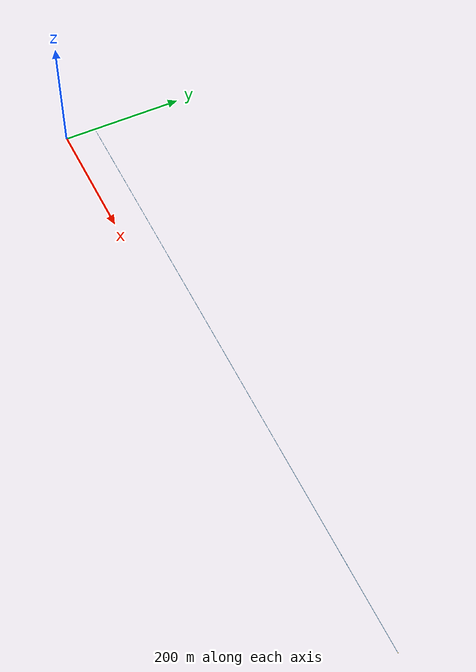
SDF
<?xml version="1.0"?>
<sdf version="1.9">
  <!-- Generated by gen_mpc_perimeter_patrol_model.py. -->
  <!-- Visual route guide; no obstacles are included. -->
  <model name="mpc_perimeter_patrol_field">
    <static>true</static>
    <link name="field_link">
      <visual name="shuttle_centerline">
        <pose>500.000000 50.000000 0.010000 0 0 0.00000000</pose>
        <cast_shadows>false</cast_shadows>
        <geometry>
          <box>
            <size>1000.000000 0.350000 0.008000</size>
          </box>
        </geometry>
        <material>
          <ambient>0.08 0.62 0.95 1.0</ambient>
          <diffuse>0.08 0.62 0.95 1.0</diffuse>
          <specular>0.05 0.05 0.05 1</specular>
        </material>
      </visual>
      <visual name="shuttle_reversal_west">
        <pose>0.000000 50.000000 0.010000 0 0 0</pose>
        <cast_shadows>false</cast_shadows>
        <geometry><cylinder><radius>0.55</radius><length>0.012</length></cylinder></geometry>
        <material>
          <ambient>1.0 0.82 0.05 1.0</ambient>
          <diffuse>1.0 0.82 0.05 1.0</diffuse>
          <specular>0.05 0.05 0.05 1</specular>
        </material>
      </visual>
      <visual name="shuttle_reversal_east">
        <pose>1000.000000 50.000000 0.010000 0 0 0</pose>
        <cast_shadows>false</cast_shadows>
        <geometry><cylinder><radius>0.55</radius><length>0.012</length></cylinder></geometry>
        <material>
          <ambient>1.0 0.82 0.05 1.0</ambient>
          <diffuse>1.0 0.82 0.05 1.0</diffuse>
          <specular>0.05 0.05 0.05 1</specular>
        </material>
      </visual>
    </link>
  </model>
</sdf>
